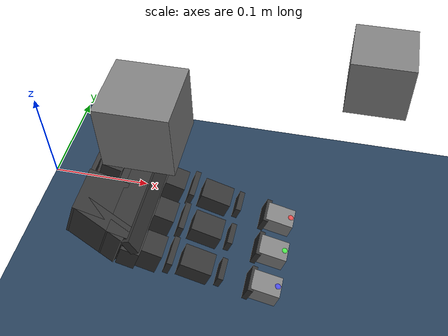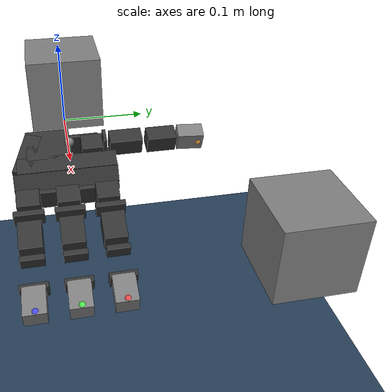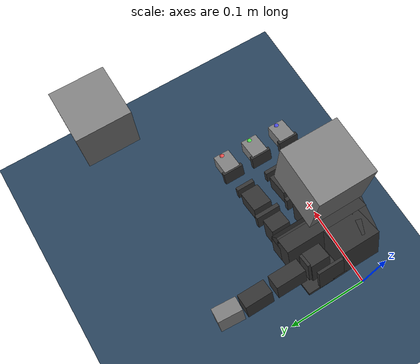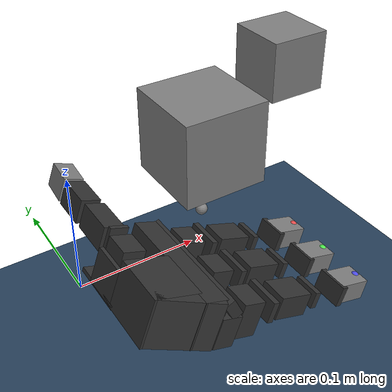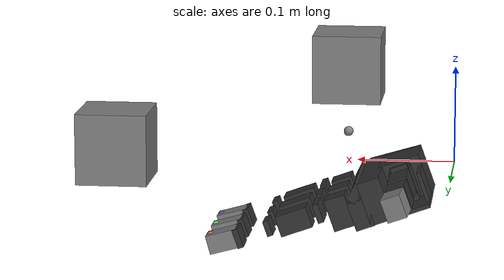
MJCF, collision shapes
<mujoco model="left leap hand scene">
  <include file="left_hand_mjx_fixed.xml"/>
  <include file="reorientation_cube.xml"/>

  <statistic center="-0.07 0.1 0.12" extent=".3"/>

  <visual>
    <headlight diffuse="0.6 0.6 0.6" ambient="0.3 0.3 0.3" specular="0 0 0"/>
    <rgba haze="0.15 0.25 0.35 1"/>
    <global azimuth="45" elevation="-50"/>
  </visual>

  <asset>
    <texture type="skybox" builtin="gradient" rgb1="0.3 0.5 0.7" rgb2="0 0 0" width="512" height="3072"/>
    <texture type="2d" name="groundplane" builtin="checker" mark="edge" rgb1="0.2 0.3 0.4" rgb2="0.1 0.2 0.3"
      markrgb="0.8 0.8 0.8" width="300" height="300"/>
    <material name="groundplane" texture="groundplane" texuniform="true" texrepeat="5 5" reflectance="0.2"/>
  </asset>

  <worldbody>
    <light pos="0 0 1" dir="0 0 -1" directional="true"/>
    <geom name="floor" pos="0 0 -0.25" size="0 0 0.05" type="plane" material="groundplane"/>
    <body name="goal" mocap="true" pos="0.325 0.17 0.0475">
      <geom type="mesh" mesh="cube_mesh" material="dexcube" contype="0" conaffinity="0" density="0" group="2"/>
      <geom type="box" size=".035 .035 .035" mass=".108" group="3"/>
    </body>
    <camera name="perspective" pos="0.45 -0.4 0.2" xyaxes="1 1 0 -1 1 3"/>
    <camera name="side" pos="-0.183 0.396 0.296" xyaxes="-0.783 -0.622 -0.000 0.332 -0.419 0.845"/>
    <camera name="top" pos="0.15 0 0.5" xyaxes="0 1 0 -1 0 0"/>
    <camera name="front" pos="0.55 0 0.1" xyaxes="0 1 0 -1 0 3"/>
  </worldbody>

  <sensor>
    <!-- cube. -->
    <framepos name="cube_position" objtype="body" objname="cube"/>
    <framequat name="cube_orientation" objtype="body" objname="cube"/>
    <framelinvel name="cube_linvel" objtype="body" objname="cube"/>
    <frameangvel name="cube_angvel" objtype="body" objname="cube"/>
    <frameangacc name="cube_angacc" objtype="body" objname="cube"/>
    <framezaxis name="cube_upvector" objtype="body" objname="cube"/>

    <!-- hand. -->
    <framepos name="palm_position" objtype="site" objname="grasp_site"/>
    <framepos name="th_tip_position" objtype="site" objname="th_tip" reftype="site" refname="grasp_site"/>
    <framepos name="if_tip_position" objtype="site" objname="if_tip" reftype="site" refname="grasp_site"/>
    <framepos name="mf_tip_position" objtype="site" objname="mf_tip" reftype="site" refname="grasp_site"/>
    <framepos name="rf_tip_position" objtype="site" objname="rf_tip" reftype="site" refname="grasp_site"/>

    <!-- goal. -->
    <framequat name="cube_goal_orientation" objtype="body" objname="goal"/>
    <framezaxis name="cube_goal_upvector" objtype="body" objname="goal"/>
  </sensor>

  <keyframe>
    <key name="home"
      qpos="
      0.8 0 0.8 0.8
      0.8 0 0.8 0.8
      0.8 0 0.8 0.8
      -0.6 -1.2 0.8 0.4
      0.1 0.0 0.05 0.810967 -0.00262895 -0.585086 -0.000254303"/>
  </keyframe>
</mujoco>

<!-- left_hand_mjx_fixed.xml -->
<mujoco model="leap_lh">
  <compiler angle="radian" autolimits="true"/>
  <option timestep="0.01" integrator="Euler" iterations="5" ls_iterations="8">
    <flag eulerdamp="disable"/>
  </option>

  <custom>
    <numeric data="30" name="max_contact_points"/>
    <numeric data="12" name="max_geom_pairs"/>
  </custom>

  <asset>
    <material name="black" rgba="0.2 0.2 0.2 1"/>
    <material name="white" rgba="1 1 1 1"/>

    <mesh name="palm" file="assets/palm_left.obj"/>
    <mesh name="base" file="assets/base.obj"/>
    <mesh name="proximal" file="assets/proximal.obj"/>
    <mesh name="medial" file="assets/medial.obj"/>
    <mesh name="distal" file="assets/distal.obj"/>
    <mesh name="tip" file="assets/tip.obj"/>
    <mesh name="thumb_mp_left" file="assets/thumb_mp_left.obj"/>
    <mesh name="thumb_base" file="assets/thumb_base.obj"/>
    <mesh name="thumb_proximal" file="assets/thumb_proximal.obj"/>
    <mesh name="thumb_distal" file="assets/thumb_distal.obj"/>
    <mesh name="thumb_tip" file="assets/thumb_tip.obj"/>
  </asset>

  <!-- defaults -->
  <default>
    <!-- constraint stiffness -->
    <geom friction=".2"/>

    <!-- actuator defaults -->
    <motor ctrlrange="-10 10"/>
    <joint damping="0.001" armature="0.0048" frictionloss="0.006"/>

    <!-- geom class defaults -->
    <default class="visual">
      <geom group="2" type="mesh" contype="0" conaffinity="0" density="0" material="black"/>
    </default>
    <default class="collision">
      <geom group="3" material="black"/>
    </default>
    <default class="tip">
      <geom size="0.01 0.012 0.016" pos="-0.0012969 -0.0335524 0.0145207"
        quat="0.703552 0.709596 -0.0292107 -0.0252203" type="box" friction="0.7 0.05 0.0002" group="3" rgba=".5 .5 .5 .3"/>
    </default>
    <default class="thumb_tip">
      <geom size="0.01 0.012 0.016" pos="-0.00127744 -0.0455619 -0.0144774"
        quat="0.708101 0.705072 -0.0294902 -0.024426" type="box" friction="0.7 0.05 0.0002" group="3" rgba=".5 .5 .5 .3"/>
    </default>

    <!-- joint class defaults -->
    <default class="mcp">
      <joint pos="0 0 0" axis="0 0 -1" limited="true" range="-0.314 2.23"/>
    </default>
    <default class="rot">
      <joint pos="0 0 0" axis="0 0 -1" limited="true" range="-1.047 1.047"/>
    </default>
    <default class="pip">
      <joint pos="0 0 0" axis="0 0 -1" limited="true" range="-0.506 1.885"/>
    </default>
    <default class="dip">
      <joint pos="0 0 0" axis="0 0 -1" limited="true" range="-0.366 2.042"/>
    </default>
    <default class="thumb_cmc">
      <joint pos="0 0 0" axis="0 0 -1" limited="true" range="-2.094 0.349"/>
    </default>
    <default class="thumb_axl">
      <joint pos="0 0 0" axis="0 0 -1" limited="true" range="-2.094 0.349"/>
    </default>
    <default class="thumb_mcp">
      <joint pos="0 0 0" axis="0 0 -1" limited="true" range="-1.22 2.443"/>
    </default>
    <default class="thumb_ipl">
      <joint pos="0 0 0" axis="0 0 -1" limited="true" range="-1.34 1.88"/>
    </default>
  </default>

  <!-- collision filtering -->
  <contact>
    <!-- filter the palm from all other finger bodies except the tips -->
    <exclude body1="palm" body2="if_bs"/>
    <exclude body1="palm" body2="mf_bs"/>
    <exclude body1="palm" body2="rf_bs"/>
    <exclude body1="palm" body2="th_mp"/>

    <exclude body1="palm" body2="if_px"/>
    <exclude body1="palm" body2="mf_px"/>
    <exclude body1="palm" body2="rf_px"/>
    <exclude body1="palm" body2="th_bs"/>

    <exclude body1="palm" body2="if_md"/>
    <exclude body1="palm" body2="mf_md"/>
    <exclude body1="palm" body2="rf_md"/>
    <exclude body1="palm" body2="th_px"/>

    <!-- none of the base fingertip geoms can touch each other -->
    <exclude body1="if_bs" body2="mf_bs"/>
    <exclude body1="if_bs" body2="rf_bs"/>
    <exclude body1="mf_bs" body2="rf_bs"/>

    <exclude body1="th_mp" body2="if_bs"/>
    <exclude body1="th_mp" body2="mf_bs"/>
    <exclude body1="th_mp" body2="rf_bs"/>
  </contact>

  <!-- actuators -->
  <actuator>
    <!-- index -->
    <motor name="if_mcp_act" joint="if_mcp"/>
    <motor name="if_rot_act" joint="if_rot"/>
    <motor name="if_pip_act" joint="if_pip"/>
    <motor name="if_dip_act" joint="if_dip"/>

    <!-- middle -->
    <motor name="mf_mcp_act" joint="mf_mcp"/>
    <motor name="mf_rot_act" joint="mf_rot"/>
    <motor name="mf_pip_act" joint="mf_pip"/>
    <motor name="mf_dip_act" joint="mf_dip"/>

    <!-- ring -->
    <motor name="rf_mcp_act" joint="rf_mcp"/>
    <motor name="rf_rot_act" joint="rf_rot"/>
    <motor name="rf_pip_act" joint="rf_pip"/>
    <motor name="rf_dip_act" joint="rf_dip"/>

    <!-- thumb -->
    <motor name="th_cmc_act" joint="th_cmc"/>
    <motor name="th_axl_act" joint="th_axl"/>
    <motor name="th_mcp_act" joint="th_mcp"/>
    <motor name="th_ipl_act" joint="th_ipl"/>
  </actuator>

  <!-- sensors -->
  <sensor>
    <!-- index -->
    <jointpos name="if_mcp_sensor" joint="if_mcp"/>
    <jointpos name="if_rot_sensor" joint="if_rot"/>
    <jointpos name="if_pip_sensor" joint="if_pip"/>
    <jointpos name="if_dip_sensor" joint="if_dip"/>

    <!-- middle -->
    <jointpos name="mf_mcp_sensor" joint="mf_mcp"/>
    <jointpos name="mf_rot_sensor" joint="mf_rot"/>
    <jointpos name="mf_pip_sensor" joint="mf_pip"/>
    <jointpos name="mf_dip_sensor" joint="mf_dip"/>

    <!-- ring -->
    <jointpos name="rf_mcp_sensor" joint="rf_mcp"/>
    <jointpos name="rf_rot_sensor" joint="rf_rot"/>
    <jointpos name="rf_pip_sensor" joint="rf_pip"/>
    <jointpos name="rf_dip_sensor" joint="rf_dip"/>

    <!-- thumb -->
    <jointpos name="th_cmc_sensor" joint="th_cmc"/>
    <jointpos name="th_axl_sensor" joint="th_axl"/>
    <jointpos name="th_mcp_sensor" joint="th_mcp"/>
    <jointpos name="th_ipl_sensor" joint="th_ipl"/>

    <framelinvel objtype="site" objname="if_tip" name="if_tip_linvel"/>
    <frameangvel objtype="site" objname="if_tip" name="if_tip_angvel"/>
    <framelinvel objtype="site" objname="mf_tip" name="mf_tip_linvel"/>
    <frameangvel objtype="site" objname="mf_tip" name="mf_tip_angvel"/>
    <framelinvel objtype="site" objname="rf_tip" name="rf_tip_linvel"/>
    <frameangvel objtype="site" objname="rf_tip" name="rf_tip_angvel"/>
    <framelinvel objtype="site" objname="th_tip" name="th_tip_linvel"/>
    <frameangvel objtype="site" objname="th_tip" name="th_tip_angvel"/>
  </sensor>

  <worldbody>
    <site name="grasp_site" pos="0.11 0.0 0.03"/>
    <body name="palm" pos="0.2 -0.061 -0.06045" quat="0 1 0 -0.175">
      <!-- palm -->
      <inertial pos="-0.12546 -0.047739 0.015867" quat="0.423786 0.570263 -0.402758 0.577054" mass="0.235"
        diaginertia="0.000405067 0.000304529 0.000179484"/>
      <geom name="palm_visual" pos="-0.0955 -0.117 0.0207" quat="9.38189e-07 9.38183e-07 0.707105 0.707109"
        class="visual" mesh="palm"/>
      <geom name="palm_collision_1" size="0.011 0.013 0.017" pos="-0.0848 -0.0996 0.0152" type="box" class="collision"/>
      <geom name="palm_collision_2" size="0.011 0.013 0.017" pos="-0.0848 -0.0546 0.0152" type="box" class="collision"/>
      <geom name="palm_collision_3" size="0.011 0.013 0.017" pos="-0.0848 -0.0096 0.0152" type="box" class="collision"/>
      <geom name="palm_collision_4" size="0.029 0.01 0.023" pos="-0.1428 -0.0126 0.0147" quat="0.989016 0 0 0.147806"
        type="box" class="collision"/>
      <geom name="palm_collision_5" size="0.01 0.06 0.015" pos="-0.1058 -0.0555 0.0232" type="box" class="collision"/>
      <geom name="palm_collision_6" size="0.005 0.06 0.01" pos="-0.1078 -0.0555 0.0002" quat="0.923956 0 0.382499 0"
        type="box" class="collision"/>
      <geom name="palm_collision_7" size="0.012 0.058 0.023" pos="-0.1238 -0.0575 0.0147" type="box" class="collision"/>
      <geom name="palm_collision_8" size="0.022 0.026 0.023" pos="-0.1538 -0.0375 0.0147" type="box" class="collision"/>
      <geom name="palm_collision_9" size="0.002 0.018 0.017" pos="-0.1738 -0.0815 0.0202" type="box" class="collision"/>
      <geom name="palm_collision_10" size="0.022 0.028 0.002" pos="-0.1538 -0.0875 0.0362" type="box" class="collision"/>

      <!-- index -->
      <body name="if_bs" pos="-0.0825 -0.0857 0.0078" quat="0.500003 0.5 0.5 -0.499997">
        <inertial pos="-0.022516 0.033882 0.016359" quat="0.388092 0.677951 -0.247713 0.573067" mass="0.044"
          diaginertia="1.74972e-05 1.61504e-05 7.21342e-06"/>
        <joint name="if_mcp" class="mcp"/>
        <geom name="if_bs_visual" pos="0.0084 0.0077 0.01465" quat="1 0 0 0" class="visual" mesh="base"/>
        <geom name="if_bs_collision_1" size="0.01 0.003 0.017" pos="0 0.018 0.0147" type="box" class="collision"/>
        <body name="if_px" pos="-0.0122 0.0381 0.0145" quat="0.500003 -0.5 -0.499997 0.5">
          <inertial pos="0.0075 -0.0002 -0.011" quat="0 0.707107 0 0.707107" mass="0.032"
            diaginertia="4.8853e-06 4.3733e-06 3.0933e-06"/>
          <joint name="if_rot" class="rot"/>
          <geom name="if_px_visual" pos="0.0096 0.0002 0.0007" quat="0.500003 -0.5 -0.5 -0.499997" class="visual"
            mesh="proximal"/>
          <geom name="if_px_collision" size="0.017 0.013 0.011" pos="0.0075 -0.0002 -0.011" type="box" class="collision"/>

          <body name="if_md" pos="0.015 0.0143 -0.013" quat="0.500003 0.5 -0.5 0.499997">
            <inertial pos="0.0054215 -0.029148 0.015" quat="0.687228 0.687228 0.166487 0.166487" mass="0.037"
              diaginertia="8.28004e-06 8.1598e-06 5.39516e-06"/>
            <joint name="if_pip" class="pip"/>
            <geom name="if_md_visual" pos="0.0211 -0.0084 0.0097" quat="2.67949e-08 -1 0 0" class="visual" mesh="medial"/>
            <geom name="if_md_collision_1" size="0.008 0.003 0.013" pos="0 -0.02 0.015" type="box" class="collision"/>
            <body name="if_ds" pos="0 -0.0361 0.0002">
              <inertial pos="-0.0008794 -0.027019 0.014594" quat="0.702905 0.710643 -0.0212937 -0.0214203" mass="0.016"
                diaginertia="3.71863e-06 3.02396e-06 1.6518e-06"/>
              <joint name="if_dip" class="dip"/>
              <geom name="if_ds_visual" pos="0.0132 -0.0061 0.0144" quat="2.67949e-08 1 0 0" class="visual"
                mesh="distal"/>
              <geom name="if_ds_collision_1" size="0.01 0.003 0.015" pos="0 -0.017 0.015" type="box" class="collision"/>
              <geom name="if_tip" class="tip"/>
              <geom type="mesh" mesh="tip" class="visual" material="white"/>
              <site name="if_tip" pos="-0.01 -0.045 0.015" quat="-0.5 -0.5 0.5 0.5" type="sphere" size="0.004"
                rgba="0.9 0.3 0.3 1"/>
            </body>
          </body>
        </body>
      </body>  <!--
      index -->

      <!-- middle -->
      <body name="mf_bs" pos="-0.0825 -0.0403 0.0078" quat="0.500003 0.5 0.5 -0.499997">
        <inertial pos="-0.022516 0.033882 0.016359" quat="0.388092 0.677951 -0.247713 0.573067" mass="0.044"
          diaginertia="1.74972e-05 1.61504e-05 7.21342e-06"/>
        <joint name="mf_mcp" class="mcp"/>
        <geom name="mf_bs_visual" pos="0.0084 0.0077 0.01465" quat="1 0 0 0" class="visual" mesh="base"/>
        <geom name="mf_bs_collision_1" size="0.01 0.003 0.017" pos="0 0.018 0.0147" type="box" class="collision"/>
        <body name="mf_px" pos="-0.0122 0.0381 0.0145" quat="0.500003 -0.5 -0.499997 0.5">
          <inertial pos="0.0075 -0.0002 -0.011" quat="0 0.707107 0 0.707107" mass="0.032"
            diaginertia="4.8853e-06 4.3733e-06 3.0933e-06"/>
          <joint name="mf_rot" class="rot"/>
          <geom name="mf_px_visual" pos="0.0096 0.0003 0.0007" quat="0.500003 -0.5 -0.5 -0.499997" class="visual"
            mesh="proximal"/>
          <geom name="mf_px_collision" size="0.017 0.013 0.011" pos="0.0075 -0.0002 -0.011" type="box" class="collision"/>

          <body name="mf_md" pos="0.015 0.0143 -0.013" quat="0.500003 0.5 -0.5 0.499997">
            <inertial pos="0.0054215 -0.029148 0.015" quat="0.687228 0.687228 0.166487 0.166487" mass="0.037"
              diaginertia="8.28004e-06 8.1598e-06 5.39516e-06"/>
            <joint name="mf_pip" class="pip"/>
            <geom name="mf_md_visual" pos="0.0211 -0.0084 0.0097" quat="1.32679e-06 -1 0 0" class="visual" mesh="medial"/>
            <geom name="mf_md_collision_1" size="0.008 0.003 0.013" pos="0 -0.02 0.015" type="box" class="collision"/>

            <body name="mf_ds" pos="0 -0.0361 0.0002">
              <inertial pos="-0.0008794 -0.027019 0.014594" quat="0.702905 0.710643 -0.0212937 -0.0214203" mass="0.016"
                diaginertia="3.71863e-06 3.02396e-06 1.6518e-06"/>
              <joint name="mf_dip" class="dip"/>
              <geom name="mf_ds_visual" pos="0.0132 -0.0061 0.0145" quat="1.32679e-06 1 0 0" class="visual"
                mesh="distal"/>
              <geom name="mf_ds_collision_1" size="0.01 0.003 0.015" pos="0 -0.017 0.015" type="box" class="collision"/>

              <geom name="mf_tip" class="tip"/>
              <geom type="mesh" mesh="tip" class="visual" material="white"/>
              <site name="mf_tip" pos="-0.01 -0.045 0.015" quat="-0.5 -0.5 0.5 0.5" type="sphere" size="0.004"
                rgba="0.3 0.9 0.3 1"/>
            </body>

          </body>
        </body>
      </body>  <!--
      middle -->

      <!-- ring -->
      <body name="rf_bs" pos="-0.0825 0.0051 0.0078" quat="0.500003 0.5 0.5 -0.499997">
        <inertial pos="-0.022516 0.033882 0.016359" quat="0.388092 0.677951 -0.247713 0.573067" mass="0.044"
          diaginertia="1.74972e-05 1.61504e-05 7.21342e-06"/>
        <joint name="rf_mcp" class="mcp"/>
        <geom name="rf_bs_visual" pos="0.0084 0.0077 0.01465" quat="1 0 0 0" class="visual" mesh="base"/>
        <geom name="rf_bs_collision_1" size="0.01 0.003 0.017" pos="0 0.018 0.0147" type="box" class="collision"/>

        <body name="rf_px" pos="-0.0122 0.0381 0.0145" quat="0.500003 -0.5 -0.499997 0.5">
          <inertial pos="0.0075 -0.0002 -0.011" quat="0 0.707107 0 0.707107" mass="0.032"
            diaginertia="4.8853e-06 4.3733e-06 3.0933e-06"/>
          <joint name="rf_rot" class="rot"/>
          <geom name="rf_px_visual" pos="0.0096 0.0003 0.0007" quat="0.500003 -0.5 -0.5 -0.499997" class="visual"
            mesh="proximal"/>
          <geom name="rf_px_collision" size="0.017 0.013 0.011" pos="0.0075 -0.0002 -0.011" type="box" class="collision"/>

          <body name="rf_md" pos="0.015 0.0143 -0.013" quat="0.500003 0.5 -0.5 0.499997">
            <inertial pos="0.0054215 -0.029148 0.015" quat="0.687228 0.687228 0.166487 0.166487" mass="0.037"
              diaginertia="8.28004e-06 8.1598e-06 5.39516e-06"/>
            <joint name="rf_pip" class="pip"/>
            <geom name="rf_md_visual" pos="0.0211 -0.0084 0.0097" quat="1.32679e-06 -1 0 0" class="visual" mesh="medial"/>
            <geom name="rf_md_collision_1" size="0.008 0.003 0.013" pos="0 -0.02 0.015" type="box" class="collision"/>

            <body name="rf_ds" pos="0 -0.03609 0.0002">
              <inertial pos="-0.0008794 -0.027019 0.014594" quat="0.702905 0.710643 -0.0212937 -0.0214203" mass="0.016"
                diaginertia="3.71863e-06 3.02396e-06 1.6518e-06"/>
              <joint name="rf_dip" class="dip"/>
              <geom name="rf_ds_visual" pos="0.0132 -0.0061 0.0145" quat="1.32679e-06 1 0 0" class="visual"
                mesh="distal"/>
              <geom name="rf_ds_collision_1" size="0.01 0.003 0.015" pos="0 -0.017 0.015" type="box" class="collision"/>

              <geom name="rf_tip" class="tip"/>
              <geom type="mesh" mesh="tip" class="visual" material="white"/>
              <site name="rf_tip" pos="-0.01 -0.045 0.015" quat="-0.5 -0.5 0.5 0.5" type="sphere" size="0.004"
                rgba="0.3 0.3 0.9 1"/>
            </body>

          </body>
        </body>
      </body>  <!--
      ring -->

      <!-- thumb -->
      <body name="th_mp" pos="-0.1448 -0.09 0.0049" quat="0.707109 0 0.707105 0">
        <inertial pos="-0.0069 0 -0.0109" quat="0 0.707107 0 0.707107" mass="0.032"
          diaginertia="4.8853e-06 4.3733e-06 3.0933e-06"/>
        <joint name="th_cmc" class="thumb_cmc"/>
        <geom name="th_mp_visual" pos="0.0439 0.0068 0.02146" quat="0.707109 0.707105 0 0" class="visual"
          mesh="thumb_mp_left"/>
        <geom name="th_mp_collision" size="0.017 0.013 0.011" pos="-0.0069 0 -0.0109" type="box" class="collision"/>

        <body name="th_bs" pos="0 -0.0143 -0.013" quat="0.500003 -0.5 -0.5 -0.499997">
          <inertial pos="0 0 -0.0070806" quat="0.707107 0.707107 0 0" mass="0.003"
            diaginertia="6.1932e-07 5.351e-07 2.1516e-07"/>
          <joint name="th_axl" class="thumb_axl"/>
          <geom name="th_bs_visual" pos="0.01196 0 -0.0158" quat="0.707109 0.707105 0 0" class="visual"
            mesh="thumb_base"/>
          <geom name="th_bs_collision_1" size="0.009 0.0165 0.002" pos="0 0 -0.0015" type="box" class="collision"/>

          <body name="th_px" pos="0 0.0145 -0.017" quat="0.707109 -0.707105 0 0">
            <inertial pos="-0.0020593 0.015912 -0.013733" quat="0.698518 0.697382 -0.104933 0.121324" mass="0.038"
              diaginertia="9.87104e-06 9.32653e-06 4.36203e-06"/>
            <joint name="th_mcp" class="thumb_mcp"/>
            <geom name="th_px_visual" pos="0.0439 0.0579 -0.0086" quat="1 0 0 0" class="visual" mesh="thumb_proximal"/>
            <geom name="th_px_collision_1" size="0.01 0.02 0.012" pos="0 0.0105 -0.014" type="box" class="collision"/>

            <body name="th_ds" pos="0 0.0466 0.0002" quat="1.32679e-06 0 0 1">
              <inertial pos="0.00096191 -0.024203 -0.014419" quat="0.35287 0.311272 -0.632839 0.614904" mass="0.049"
                diaginertia="2.08591e-05 2.0402e-05 4.71335e-06"/>
              <joint name="th_ipl" class="thumb_ipl"/>
              <geom name="th_ds_visual" pos="0.0625 0.0784 0.0489" quat="1 0 0 0" class="visual" mesh="thumb_distal"/>
              <geom name="th_ds_collision_1" size="0.01 0.018 0.012" pos="0 -0.0085 -0.015" type="box" class="collision"/>

              <geom name="th_tip" class="thumb_tip"/>
              <geom type="mesh" mesh="thumb_tip" class="visual" material="white"/>
              <site name="th_tip" pos="-0.01 -0.055 -0.015" quat="-0.5 -0.5 0.5 0.5" type="sphere" size="0.004"
                rgba="0.9 0.6 0.2 1"/>
            </body>

          </body>
        </body>
      </body>  <!--
      thumb -->

    </body>  <!--
    palm -->
  </worldbody>
</mujoco>

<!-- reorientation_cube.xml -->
<mujoco>
  <default>
    <default class="cube">
      <geom friction=".3 0.05" conaffinity="2" condim="3"/>
    </default>
  </default>

  <asset>
    <texture name="cube" type="cube" fileup="reorientation_cube_textures/fileup.png"
      fileback="reorientation_cube_textures/fileback.png" filedown="reorientation_cube_textures/filedown.png"
      filefront="reorientation_cube_textures/filefront.png" fileleft="reorientation_cube_textures/fileleft.png"
      fileright="reorientation_cube_textures/fileright.png"/>
    <material name="cube" texture="cube"/>
    <texture name="graycube" type="cube" fileup="reorientation_cube_textures/grayup.png"
      fileback="reorientation_cube_textures/grayback.png" filedown="reorientation_cube_textures/graydown.png"
      filefront="reorientation_cube_textures/grayfront.png" fileleft="reorientation_cube_textures/grayleft.png"
      fileright="reorientation_cube_textures/grayright.png"/>
    <material name="graycube" texture="graycube"/>
    <texture name="dexcube" type="2d" file="reorientation_cube_textures/dex_cube.png"/>
    <material name="dexcube" texture="dexcube"/>
    <mesh name="cube_mesh" file="assets/dex_cube.obj" scale="0.035 0.035 0.035"/>
  </asset>

  <worldbody>
    <body name="cube" pos="0.11 0.0 0.1" quat="1 0 0 0" childclass="cube">
      <freejoint name="cube_freejoint"/>
      <geom type="mesh" mesh="cube_mesh" material="dexcube" contype="0" conaffinity="0" density="0" group="2"/>
      <geom name="cube" type="box" size=".035 .035 .035" mass=".108" group="3"/>
      <site name="cube_center" pos="0 0 0" group="4"/>
    </body>
  </worldbody>
</mujoco>
